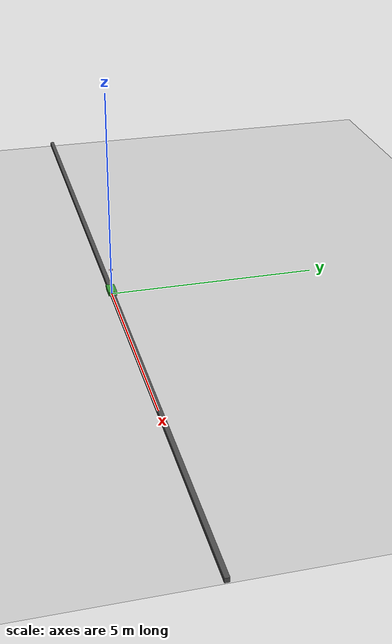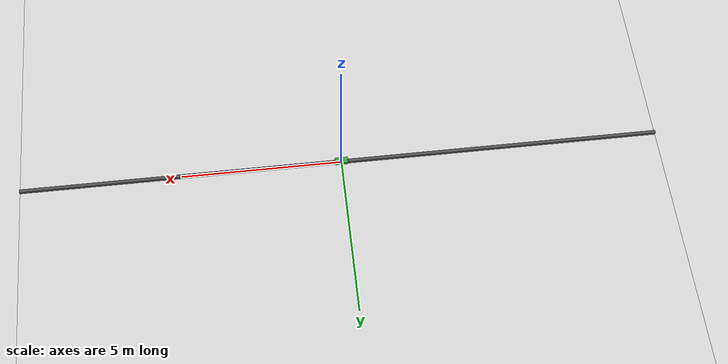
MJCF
<mujoco model="cartpole">
    <option timestep="0.02" gravity="0 0 -9.81"/>

    <worldbody>
        <!-- Ground plane -->
        <geom type="plane" size="10 10 0.1" rgba="0.8 0.8 0.8 1"/>

        <!-- Rail (visual only) -->
        <geom type="box" pos="0 0 0.05" size="10 0.05 0.05" rgba="0.3 0.3 0.3 1" contype="0" conaffinity="0"/>

        <!-- Cart -->
        <body name="cart" pos="0 0 0.1">
            <joint name="slider" type="slide" axis="1 0 0" damping="0.5" range="-10 10"/>
            <geom type="box" size="0.2 0.1 0.05" mass="1" rgba="0.2 0.6 0.2 1"/>

            <!-- Pole -->
            <body name="pole" pos="0 0 0.05">
                <joint name="hinge" type="hinge" axis="0 1 0" damping="0.001"/>
                <geom type="capsule" fromto="0 0 0 0 0 0.5" size="0.02" mass="0.1" rgba="0.8 0.4 0.1 1"/>
                <!-- Pole tip (visual marker on pole body, not a separate body) -->
                <geom name="pole_tip" type="sphere" pos="0 0 0.5" size="0.04" mass="0.01" rgba="0.8 0.1 0.1 1"/>
            </body>
        </body>
    </worldbody>

    <actuator>
        <motor joint="slider" ctrlrange="-30 30" gear="1"/>
    </actuator>

    <sensor>
        <jointpos joint="slider"/>
        <jointvel joint="slider"/>
        <jointpos joint="hinge"/>
        <jointvel joint="hinge"/>
    </sensor>
</mujoco>
